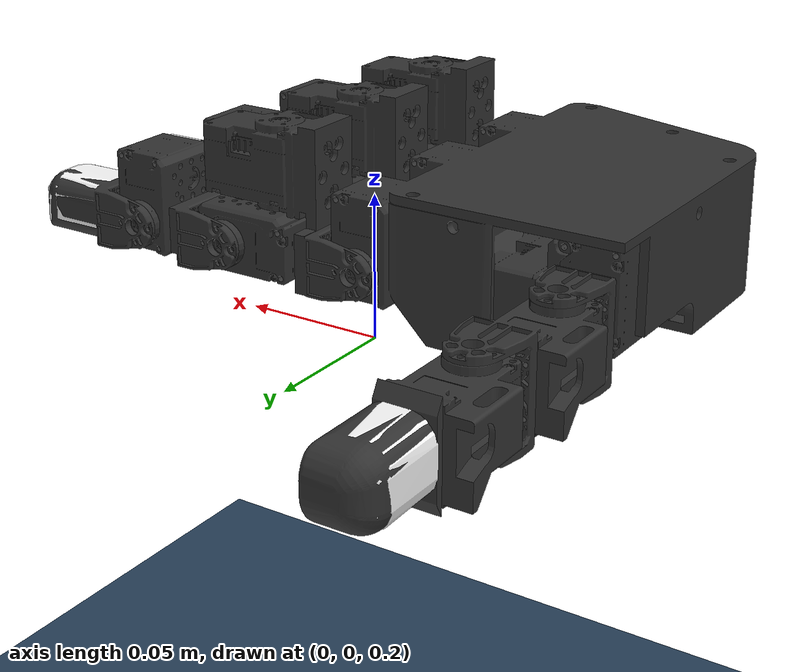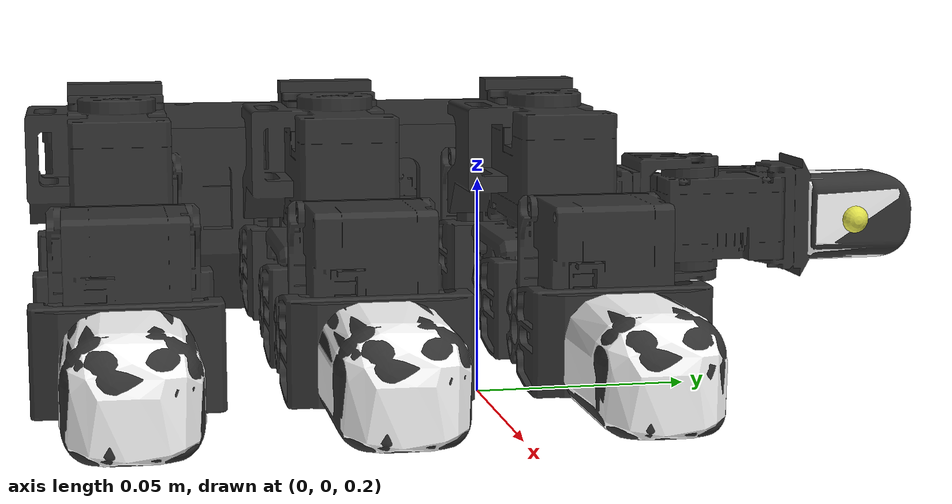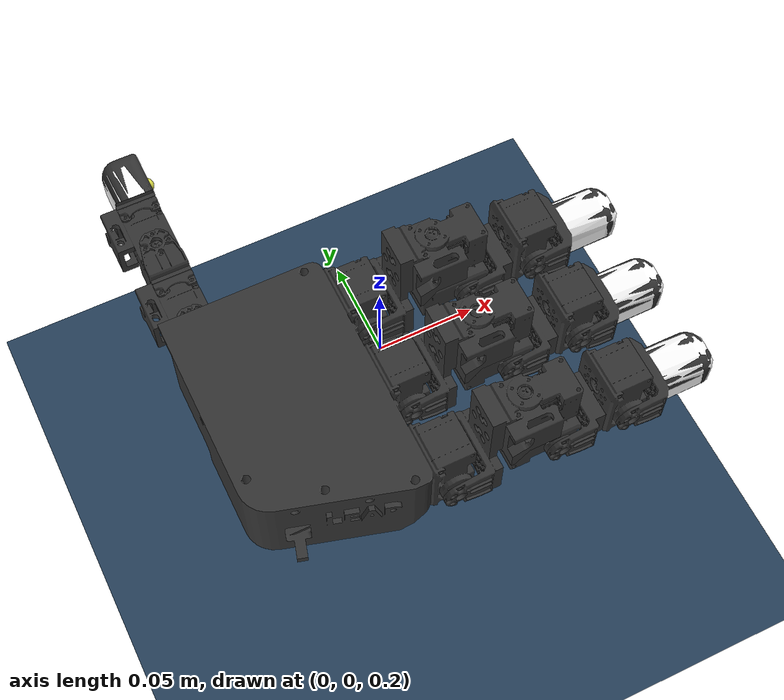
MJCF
<mujoco model="right leap hand scene">
  <include file="right_hand_fixed.xml"/>

  <statistic center="-0.07 0.1 0.12" extent=".3"/>

  <visual>
    <headlight diffuse="0.6 0.6 0.6" ambient="0.3 0.3 0.3" specular="0 0 0"/>
    <rgba haze="0.15 0.25 0.35 1"/>
    <global azimuth="45" elevation="-50"/>
  </visual>

  <asset>
    <texture type="skybox" builtin="gradient" rgb1="0.3 0.5 0.7" rgb2="0 0 0" width="512" height="3072"/>
    <texture type="2d" name="groundplane" builtin="checker" mark="edge" rgb1="0.2 0.3 0.4" rgb2="0.1 0.2 0.3"
    markrgb="0.8 0.8 0.8" width="300" height="300"/>
    <material name="groundplane" texture="groundplane" texuniform="true" texrepeat="5 5" reflectance="0.2"/>
  </asset>

  <worldbody>
    <light pos="0 0 1" dir="0 0 -1" directional="true"/>
    <geom name="floor" size="0 0 0.05" type="plane" material="groundplane"/>
    <camera name="perspective" pos="0.4 -0.4 0.4" xyaxes="1 1 0 -1 1 3" mode="trackcom"/>
    <camera name="side" pos="0 -0.6 0.4" xyaxes="1 0 0 0 1 3" mode="trackcom"/>
    <camera name="top" pos="0 0 0.6" xyaxes="0 1 0 -1 0 0" mode="trackcom"/>
    <camera name="front" pos="0.6 0 0.4" xyaxes="0 1 0 -1 0 3" mode="trackcom"/>
  </worldbody>

  <sensor>
    <framepos name="th_tip_framepos" objtype="site" objname="th_tip"/>
    <framequat name="th_tip_framequat" objtype="site" objname="th_tip"/>
    <framelinvel name="th_tip_framelinvel" objtype="site" objname="th_tip"/>
    <frameangvel name="th_tip_frameangvel" objtype="site" objname="th_tip"/>
    <force name="th_tip_force" site="th_tip"/>
    <torque name="th_tip_torque" site="th_tip"/>

    <framepos name="if_tip_framepos" objtype="site" objname="if_tip"/>
    <framequat name="if_tip_framequat" objtype="site" objname="if_tip"/>
    <framelinvel name="if_tip_framelinvel" objtype="site" objname="if_tip"/>
    <frameangvel name="if_tip_frameangvel" objtype="site" objname="if_tip"/>
    <force name="if_tip_force" site="if_tip"/>
    <torque name="if_tip_torque" site="if_tip"/>

    <framepos name="mf_tip_framepos" objtype="site" objname="mf_tip"/>
    <framequat name="mf_tip_framequat" objtype="site" objname="mf_tip"/>
    <framelinvel name="mf_tip_framelinvel" objtype="site" objname="mf_tip"/>
    <frameangvel name="mf_tip_frameangvel" objtype="site" objname="mf_tip"/>
    <force name="mf_tip_force" site="mf_tip"/>
    <torque name="mf_tip_torque" site="mf_tip"/>
  </sensor>
</mujoco>

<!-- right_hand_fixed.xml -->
<!-- LEAP Hand (Right-Handed) - MCC compatible
     Based on MuJoCo Menagerie right hand with MCC actuator/joint conventions.

Joint/body naming follows the same convention as left_hand_fixed.xml.
-->

<mujoco model="leap_rh">
  <compiler angle="radian" meshdir="./assets/" autolimits="true"/>

  <asset>
    <material name="black" rgba="0.2 0.2 0.2 1"/>
    <material name="white" rgba="1 1 1 1"/>

    <mesh name="palm" file="palm_right.obj"/>
    <mesh name="base" file="base.obj"/>
    <mesh name="proximal" file="proximal.obj"/>
    <mesh name="medial" file="medial.obj"/>
    <mesh name="distal" file="distal.obj"/>
    <mesh name="tip" file="tip.obj"/>
    <mesh name="thumb_base" file="thumb_base.obj"/>
    <mesh name="thumb_proximal" file="thumb_proximal.obj"/>
    <mesh name="thumb_distal" file="thumb_distal.obj"/>
    <mesh name="thumb_tip" file="thumb_tip.obj"/>
  </asset>

  <!-- defaults (matching MCC left_hand_fixed.xml) -->
  <default>
    <geom friction=".2"/>

    <!-- MCC actuator defaults -->
    <motor ctrlrange="-10 10"/>
    <joint damping="0.001" armature="0.0048" frictionloss="0.006"/>

    <!-- geom class defaults -->
    <default class="visual">
      <geom group="2" type="mesh" contype="0" conaffinity="0" density="0" material="black"/>
    </default>
    <default class="collision">
      <geom group="3" material="black"/>
    </default>
    <default class="tip">
      <geom type="mesh" mesh="tip" friction="0.5" material="white"/>
    </default>
    <default class="thumb_tip">
      <geom type="mesh" mesh="thumb_tip" friction="0.5" material="white"/>
    </default>

    <!-- joint class defaults (right hand: thumb limits flipped vs left) -->
    <default class="mcp">
      <joint pos="0 0 0" axis="0 0 -1" limited="true" range="-0.314 2.23"/>
    </default>
    <default class="rot">
      <joint pos="0 0 0" axis="0 0 -1" limited="true" range="-1.047 1.047"/>
    </default>
    <default class="pip">
      <joint pos="0 0 0" axis="0 0 -1" limited="true" range="-0.506 1.885"/>
    </default>
    <default class="dip">
      <joint pos="0 0 0" axis="0 0 -1" limited="true" range="-0.366 2.042"/>
    </default>
    <default class="thumb_cmc">
      <joint pos="0 0 0" axis="0 0 -1" limited="true" range="-0.349 2.094"/>
    </default>
    <default class="thumb_axl">
      <joint pos="0 0 0" axis="0 0 -1" limited="true" range="-0.349 2.094"/>
    </default>
    <default class="thumb_mcp">
      <joint pos="0 0 0" axis="0 0 -1" limited="true" range="-0.47 2.443"/>
    </default>
    <default class="thumb_ipl">
      <joint pos="0 0 0" axis="0 0 -1" limited="true" range="-1.34 1.88"/>
    </default>
  </default>

  <!-- collision filtering -->
  <contact>
    <exclude body1="palm" body2="if_bs"/>
    <exclude body1="palm" body2="mf_bs"/>
    <exclude body1="palm" body2="rf_bs"/>
    <exclude body1="palm" body2="th_mp"/>

    <exclude body1="palm" body2="if_px"/>
    <exclude body1="palm" body2="mf_px"/>
    <exclude body1="palm" body2="rf_px"/>
    <exclude body1="palm" body2="th_bs"/>

    <exclude body1="palm" body2="if_md"/>
    <exclude body1="palm" body2="mf_md"/>
    <exclude body1="palm" body2="rf_md"/>
    <exclude body1="palm" body2="th_px"/>

    <exclude body1="if_bs" body2="mf_bs"/>
    <exclude body1="if_bs" body2="rf_bs"/>
    <exclude body1="mf_bs" body2="rf_bs"/>

    <exclude body1="th_mp" body2="if_bs"/>
    <exclude body1="th_mp" body2="mf_bs"/>
    <exclude body1="th_mp" body2="rf_bs"/>
  </contact>

  <!-- MCC motor actuators (not position actuators) -->
  <actuator>
    <motor name="if_mcp_act" joint="if_mcp"/>
    <motor name="if_rot_act" joint="if_rot"/>
    <motor name="if_pip_act" joint="if_pip"/>
    <motor name="if_dip_act" joint="if_dip"/>

    <motor name="mf_mcp_act" joint="mf_mcp"/>
    <motor name="mf_rot_act" joint="mf_rot"/>
    <motor name="mf_pip_act" joint="mf_pip"/>
    <motor name="mf_dip_act" joint="mf_dip"/>

    <motor name="rf_mcp_act" joint="rf_mcp"/>
    <motor name="rf_rot_act" joint="rf_rot"/>
    <motor name="rf_pip_act" joint="rf_pip"/>
    <motor name="rf_dip_act" joint="rf_dip"/>

    <motor name="th_cmc_act" joint="th_cmc"/>
    <motor name="th_axl_act" joint="th_axl"/>
    <motor name="th_mcp_act" joint="th_mcp"/>
    <motor name="th_ipl_act" joint="th_ipl"/>
  </actuator>

  <!-- sensors -->
  <sensor>
    <jointpos name="if_mcp_sensor" joint="if_mcp"/>
    <jointpos name="if_rot_sensor" joint="if_rot"/>
    <jointpos name="if_pip_sensor" joint="if_pip"/>
    <jointpos name="if_dip_sensor" joint="if_dip"/>

    <jointpos name="mf_mcp_sensor" joint="mf_mcp"/>
    <jointpos name="mf_rot_sensor" joint="mf_rot"/>
    <jointpos name="mf_pip_sensor" joint="mf_pip"/>
    <jointpos name="mf_dip_sensor" joint="mf_dip"/>

    <jointpos name="rf_mcp_sensor" joint="rf_mcp"/>
    <jointpos name="rf_rot_sensor" joint="rf_rot"/>
    <jointpos name="rf_pip_sensor" joint="rf_pip"/>
    <jointpos name="rf_dip_sensor" joint="rf_dip"/>

    <jointpos name="th_cmc_sensor" joint="th_cmc"/>
    <jointpos name="th_axl_sensor" joint="th_axl"/>
    <jointpos name="th_mcp_sensor" joint="th_mcp"/>
    <jointpos name="th_ipl_sensor" joint="th_ipl"/>

    <framelinvel objtype="site" objname="if_tip" name="if_tip_linvel"/>
    <frameangvel objtype="site" objname="if_tip" name="if_tip_angvel"/>
    <framelinvel objtype="site" objname="mf_tip" name="mf_tip_linvel"/>
    <frameangvel objtype="site" objname="mf_tip" name="mf_tip_angvel"/>
    <framelinvel objtype="site" objname="rf_tip" name="rf_tip_linvel"/>
    <frameangvel objtype="site" objname="rf_tip" name="rf_tip_angvel"/>
    <framelinvel objtype="site" objname="th_tip" name="th_tip_linvel"/>
    <frameangvel objtype="site" objname="th_tip" name="th_tip_angvel"/>
  </sensor>

  <!-- Right hand body geometry (from MuJoCo Menagerie) -->
  <worldbody>
    <body name="palm" pos="0 0 0.25" quat="1 0 0 0">
      <inertial pos="-0.049542 -0.042914 -0.010227" quat="0.565586 0.427629 -0.574956 0.408254" mass="0.237" diaginertia="0.000407345 0.000304759 0.000180736"/>
      <geom name="palm_visual" pos="-0.02 0.02575 -0.0347" quat="1 0 0 0" class="visual" mesh="palm"/>
      <geom name="palm_collision_1" size="0.011 0.013 0.017" pos="-0.009 0.008 -0.011" type="box" class="collision"/>
      <geom name="palm_collision_2" size="0.011 0.013 0.017" pos="-0.009 -0.037 -0.011" type="box" class="collision"/>
      <geom name="palm_collision_3" size="0.011 0.013 0.017" pos="-0.009 -0.082 -0.011" type="box" class="collision"/>
      <geom name="palm_collision_4" size="0.029 0.01 0.023" pos="-0.066 -0.078 -0.0115" quat="0.989016 0 0 -0.147806" type="box" class="collision"/>
      <geom name="palm_collision_5" size="0.01 0.06 0.015" pos="-0.03 -0.035 -0.003" type="box" class="collision"/>
      <geom name="palm_collision_6" size="0.005 0.06 0.01" pos="-0.032 -0.035 -0.024" quat="0.923956 0 0.382499 0" type="box" class="collision"/>
      <geom name="palm_collision_7" size="0.012 0.058 0.023" pos="-0.048 -0.033 -0.0115" type="box" class="collision"/>
      <geom name="palm_collision_8" size="0.022 0.026 0.023" pos="-0.078 -0.053 -0.0115" type="box" class="collision"/>
      <geom name="palm_collision_9" size="0.002 0.018 0.017" pos="-0.098 -0.009 -0.006" type="box" class="collision"/>
      <geom name="palm_collision_10" size="0.022 0.028 0.002" pos="-0.078 -0.003 0.01" type="box" class="collision"/>

      <!-- index -->
      <body name="if_bs" pos="-0.007 0.023 -0.0187" quat="0.500003 0.5 0.5 -0.499997">
        <inertial pos="-0.022516 0.033882 0.016359" quat="0.388092 0.677951 -0.247713 0.573067" mass="0.044" diaginertia="1.74972e-05 1.61504e-05 7.21342e-06"/>
        <joint name="if_mcp" class="mcp"/>
        <geom name="if_bs_visual" pos="0.0084 0.0077 0.01465" quat="1 0 0 0" class="visual" mesh="base"/>
        <geom name="if_bs_collision_1" size="0.01 0.003 0.017" pos="0 0.018 0.0147" type="box" class="collision"/>
        <geom name="if_bs_collision_2" size="0.014 0.02 0.01" pos="-0.027 0.042 0.015" type="box" class="collision"/>
        <geom name="if_bs_collision_3" size="0.017 0.003 0.01" pos="-0.0262 0.02 0.0146" type="box" class="collision"/>
        <geom name="if_bs_collision_4" size="0.01 0.012 0.004" pos="-0.0295 0.035 0.029" type="box" class="collision"/>
        <geom name="if_bs_collision_5" size="0.007 0.01 0.002" pos="0 0.005 0.03" type="box" class="collision"/>
        <geom name="if_bs_collision_6" size="0.007 0.01 0.002" pos="0 0.005 -0.001" type="box" class="collision"/>

        <body name="if_px" pos="-0.0122 0.0381 0.0145" quat="0.500003 -0.5 -0.499997 0.5">
          <inertial pos="0.0075 -0.0002 -0.011" quat="0 0.707107 0 0.707107" mass="0.032" diaginertia="4.8853e-06 4.3733e-06 3.0933e-06"/>
          <joint name="if_rot" class="rot"/>
          <geom name="if_px_visual" pos="0.0096 0.0002 0.0007" quat="0.500003 -0.5 -0.5 -0.499997" class="visual" mesh="proximal"/>
          <geom name="if_px_collision" size="0.017 0.013 0.011" pos="0.0075 -0.0002 -0.011" type="box" class="collision"/>

          <body name="if_md" pos="0.015 0.0143 -0.013" quat="0.500003 0.5 -0.5 0.499997">
            <inertial pos="0.0054215 -0.029148 0.015" quat="0.687228 0.687228 0.166487 0.166487" mass="0.037" diaginertia="8.28004e-06 8.1598e-06 5.39516e-06"/>
            <joint name="if_pip" class="pip"/>
            <geom name="if_md_visual" pos="0.0211 -0.0084 0.0097" quat="2.67949e-08 -1 0 0" class="visual" mesh="medial"/>
            <geom name="if_md_collision_1" size="0.008 0.003 0.013" pos="0 -0.02 0.015" type="box" class="collision"/>
            <geom name="if_md_collision_2" size="0.01 0.002 0.017" pos="0 -0.016 0.015" type="box" class="collision"/>
            <geom name="if_md_collision_3" size="0.007 0.01 0.002" pos="0 -0.0045 0.03" type="box" class="collision"/>
            <geom name="if_md_collision_4" size="0.007 0.01 0.002" pos="0 -0.0045 0" type="box" class="collision"/>
            <geom name="if_md_collision_5" size="0.017 0.011 0.013" pos="0.0075 -0.035 0.015" type="box" class="collision"/>

            <body name="if_ds" pos="0 -0.0361 0.0002">
              <inertial pos="-0.0008794 -0.027019 0.014594" quat="0.702905 0.710643 -0.0212937 -0.0214203" mass="0.016" diaginertia="3.71863e-06 3.02396e-06 1.6518e-06"/>
              <joint name="if_dip" class="dip"/>
              <site name="if_tip" pos="-0.01 -0.035 0.015" quat="-0.5 -0.5 0.5 0.5" type="sphere" size="0.004" rgba="0.9 0.3 0.3 1"/>
              <geom name="if_ds_visual" pos="0.0132 -0.0061 0.0144" quat="2.67949e-08 1 0 0" class="visual" mesh="distal"/>
              <geom name="if_ds_collision_1" size="0.01 0.003 0.015" pos="0 -0.017 0.015" type="box" class="collision"/>
              <geom name="if_ds_collision_2" size="0.007 0.011 0.002" pos="0 -0.006 0.03" type="box" class="collision"/>
              <geom name="if_ds_collision_3" size="0.007 0.011 0.002" pos="0 -0.006 -0.001" type="box" class="collision"/>
              <geom name="if_tip" class="tip"/>
            </body>
          </body>
        </body>
      </body>

      <!-- middle -->
      <body name="mf_bs" pos="-0.0071 -0.0224 -0.0187" quat="0.500003 0.5 0.5 -0.499997">
        <inertial pos="-0.022516 0.033882 0.016359" quat="0.388092 0.677951 -0.247713 0.573067" mass="0.044" diaginertia="1.74972e-05 1.61504e-05 7.21342e-06"/>
        <joint name="mf_mcp" class="mcp"/>
        <geom name="mf_bs_visual" pos="0.0084 0.0077 0.01465" quat="1 0 0 0" class="visual" mesh="base"/>
        <geom name="mf_bs_collision_1" size="0.01 0.003 0.017" pos="0 0.018 0.0147" type="box" class="collision"/>
        <geom name="mf_bs_collision_2" size="0.014 0.02 0.01" pos="-0.027 0.042 0.015" type="box" class="collision"/>
        <geom name="mf_bs_collision_3" size="0.017 0.003 0.01" pos="-0.0262 0.02 0.0146" type="box" class="collision"/>
        <geom name="mf_bs_collision_4" size="0.01 0.012 0.004" pos="-0.0295 0.035 0.029" type="box" class="collision"/>
        <geom name="mf_bs_collision_5" size="0.007 0.01 0.002" pos="0 0.005 0.03" type="box" class="collision"/>
        <geom name="mf_bs_collision_6" size="0.007 0.01 0.002" pos="0 0.005 -0.001" type="box" class="collision"/>

        <body name="mf_px" pos="-0.0122 0.0381 0.0145" quat="0.500003 -0.5 -0.499997 0.5">
          <inertial pos="0.0075 -0.0002 -0.011" quat="0 0.707107 0 0.707107" mass="0.032" diaginertia="4.8853e-06 4.3733e-06 3.0933e-06"/>
          <joint name="mf_rot" class="rot"/>
          <geom name="mf_px_visual" pos="0.0096 0.0003 0.0007" quat="0.500003 -0.5 -0.5 -0.499997" class="visual" mesh="proximal"/>
          <geom name="mf_px_collision" size="0.017 0.013 0.011" pos="0.0075 -0.0002 -0.011" type="box" class="collision"/>

          <body name="mf_md" pos="0.015 0.0143 -0.013" quat="0.500003 0.5 -0.5 0.499997">
            <inertial pos="0.0054215 -0.029148 0.015" quat="0.687228 0.687228 0.166487 0.166487" mass="0.037" diaginertia="8.28004e-06 8.1598e-06 5.39516e-06"/>
            <joint name="mf_pip" class="pip"/>
            <geom name="mf_md_visual" pos="0.0211 -0.0084 0.0097" quat="1.32679e-06 -1 0 0" class="visual" mesh="medial"/>
            <geom name="mf_md_collision_1" size="0.008 0.003 0.013" pos="0 -0.02 0.015" type="box" class="collision"/>
            <geom name="mf_md_collision_2" size="0.01 0.002 0.017" pos="0 -0.016 0.015" type="box" class="collision"/>
            <geom name="mf_md_collision_3" size="0.007 0.01 0.002" pos="0 -0.0045 0.03" type="box" class="collision"/>
            <geom name="mf_md_collision_4" size="0.007 0.01 0.002" pos="0 -0.0045 0" type="box" class="collision"/>
            <geom name="mf_md_collision_5" size="0.017 0.011 0.013" pos="0.0075 -0.035 0.015" type="box" class="collision"/>

            <body name="mf_ds" pos="0 -0.0361 0.0002">
              <inertial pos="-0.0008794 -0.027019 0.014594" quat="0.702905 0.710643 -0.0212937 -0.0214203" mass="0.016" diaginertia="3.71863e-06 3.02396e-06 1.6518e-06"/>
              <joint name="mf_dip" class="dip"/>
              <site name="mf_tip" pos="-0.01 -0.035 0.015" quat="-0.5 -0.5 0.5 0.5" type="sphere" size="0.004" rgba="0.3 0.9 0.3 1"/>
              <geom name="mf_ds_visual" pos="0.0132 -0.0061 0.0145" quat="1.32679e-06 1 0 0" class="visual" mesh="distal"/>
              <geom name="mf_ds_collision_1" size="0.01 0.003 0.015" pos="0 -0.017 0.015" type="box" class="collision"/>
              <geom name="mf_ds_collision_2" size="0.007 0.011 0.002" pos="0 -0.006 0.03" type="box" class="collision"/>
              <geom name="mf_ds_collision_3" size="0.007 0.011 0.002" pos="0 -0.006 -0.001" type="box" class="collision"/>
              <geom name="mf_tip" class="tip"/>
            </body>
          </body>
        </body>
      </body>

      <!-- ring -->
      <body name="rf_bs" pos="-0.00709 -0.0678 -0.0187" quat="0.500003 0.5 0.5 -0.499997">
        <inertial pos="-0.022516 0.033882 0.016359" quat="0.388092 0.677951 -0.247713 0.573067" mass="0.044" diaginertia="1.74972e-05 1.61504e-05 7.21342e-06"/>
        <joint name="rf_mcp" class="mcp"/>
        <geom name="rf_bs_visual" pos="0.0084 0.0077 0.01465" quat="1 0 0 0" class="visual" mesh="base"/>
        <geom name="rf_bs_collision_1" size="0.01 0.003 0.017" pos="0 0.018 0.0147" type="box" class="collision"/>
        <geom name="rf_bs_collision_2" size="0.014 0.02 0.01" pos="-0.027 0.042 0.015" type="box" class="collision"/>
        <geom name="rf_bs_collision_3" size="0.017 0.003 0.01" pos="-0.0262 0.02 0.0146" type="box" class="collision"/>
        <geom name="rf_bs_collision_4" size="0.01 0.012 0.004" pos="-0.0295 0.035 0.029" type="box" class="collision"/>
        <geom name="rf_bs_collision_5" size="0.007 0.01 0.002" pos="0 0.005 0.03" type="box" class="collision"/>
        <geom name="rf_bs_collision_6" size="0.007 0.01 0.002" pos="0 0.005 -0.001" type="box" class="collision"/>

        <body name="rf_px" pos="-0.0122 0.0381 0.0145" quat="0.500003 -0.5 -0.499997 0.5">
          <inertial pos="0.0075 -0.0002 -0.011" quat="0 0.707107 0 0.707107" mass="0.032" diaginertia="4.8853e-06 4.3733e-06 3.0933e-06"/>
          <joint name="rf_rot" class="rot"/>
          <geom name="rf_px_visual" pos="0.0096 0.0003 0.0007" quat="0.500003 -0.5 -0.5 -0.499997" class="visual" mesh="proximal"/>
          <geom name="rf_px_collision" size="0.017 0.013 0.011" pos="0.0075 -0.0002 -0.011" type="box" class="collision"/>

          <body name="rf_md" pos="0.015 0.0143 -0.013" quat="0.500003 0.5 -0.5 0.499997">
            <inertial pos="0.0054215 -0.029148 0.015" quat="0.687228 0.687228 0.166487 0.166487" mass="0.037" diaginertia="8.28004e-06 8.1598e-06 5.39516e-06"/>
            <joint name="rf_pip" class="pip"/>
            <geom name="rf_md_visual" pos="0.0211 -0.0084 0.0097" quat="1.32679e-06 -1 0 0" class="visual" mesh="medial"/>
            <geom name="rf_md_collision_1" size="0.008 0.003 0.013" pos="0 -0.02 0.015" type="box" class="collision"/>
            <geom name="rf_md_collision_2" size="0.01 0.002 0.017" pos="0 -0.016 0.015" type="box" class="collision"/>
            <geom name="rf_md_collision_3" size="0.007 0.01 0.002" pos="0 -0.0045 0.03" type="box" class="collision"/>
            <geom name="rf_md_collision_4" size="0.007 0.01 0.002" pos="0 -0.0045 0" type="box" class="collision"/>
            <geom name="rf_md_collision_5" size="0.017 0.011 0.013" pos="0.0075 -0.035 0.015" type="box" class="collision"/>

            <body name="rf_ds" pos="0 -0.03609 0.0002">
              <inertial pos="-0.0008794 -0.027019 0.014594" quat="0.702905 0.710643 -0.0212937 -0.0214203" mass="0.016" diaginertia="3.71863e-06 3.02396e-06 1.6518e-06"/>
              <joint name="rf_dip" class="dip"/>
              <site name="rf_tip" pos="-0.01 -0.035 0.015" quat="-0.5 -0.5 0.5 0.5" type="sphere" size="0.004" rgba="0.3 0.3 0.9 1"/>
              <geom name="rf_ds_visual" pos="0.0132 -0.0061 0.0145" quat="1.32679e-06 1 0 0" class="visual" mesh="distal"/>
              <geom name="rf_ds_collision_1" size="0.01 0.003 0.015" pos="0 -0.017 0.015" type="box" class="collision"/>
              <geom name="rf_ds_collision_2" size="0.007 0.011 0.002" pos="0 -0.006 0.03" type="box" class="collision"/>
              <geom name="rf_ds_collision_3" size="0.007 0.011 0.002" pos="0 -0.006 -0.001" type="box" class="collision"/>
              <geom name="rf_tip" class="tip"/>
            </body>
          </body>
        </body>
      </body>

      <!-- thumb -->
      <body name="th_mp" pos="-0.0693 -0.0012 -0.0216" quat="0.707109 0 0.707105 0">
        <inertial pos="0.0075 -0.0002 -0.011" quat="0 0.707107 0 0.707107" mass="0.032" diaginertia="4.8853e-06 4.3733e-06 3.0933e-06"/>
        <joint name="th_cmc" class="thumb_cmc"/>
        <geom name="th_mp_visual" pos="-0.0053 0.0003 0.00078" quat="0.500003 -0.5 -0.5 -0.499997" class="visual" mesh="proximal"/>
        <geom name="th_mp_collision" size="0.017 0.013 0.011" pos="-0.0075 -0.0002 -0.011" type="box" class="collision"/>

        <body name="th_bs" pos="0 0.0143 -0.013" quat="0.500003 0.5 -0.5 0.499997">
          <inertial pos="0 0 -0.0070806" quat="0.707107 0.707107 0 0" mass="0.003" diaginertia="6.1932e-07 5.351e-07 2.1516e-07"/>
          <joint name="th_axl" class="thumb_axl"/>
          <geom name="th_bs_visual" pos="0.01196 0 -0.0158" quat="0.707109 0.707105 0 0" class="visual" mesh="thumb_base"/>
          <geom name="th_bs_collision_1" size="0.009 0.0165 0.002" pos="0 0 -0.0015" type="box" class="collision"/>
          <geom name="th_bs_collision_2" size="0.007 0.002 0.01" pos="0 -0.015 -0.013" type="box" class="collision"/>
          <geom name="th_bs_collision_3" size="0.007 0.002 0.01" pos="0 0.015 -0.013" type="box" class="collision"/>

          <body name="th_px" pos="0 0.0145 -0.017" quat="0.707109 -0.707105 0 0">
            <inertial pos="-0.0020593 0.015912 -0.013733" quat="0.698518 0.697382 -0.104933 0.121324" mass="0.038" diaginertia="9.87104e-06 9.32653e-06 4.36203e-06"/>
            <joint name="th_mcp" class="thumb_mcp"/>
            <geom name="th_px_visual" pos="0.0439 0.0579 -0.0086" quat="1 0 0 0" class="visual" mesh="thumb_proximal"/>
            <geom name="th_px_collision_1" size="0.01 0.02 0.012" pos="0 0.0105 -0.014" type="box" class="collision"/>
            <geom name="th_px_collision_2" size="0.01 0.002 0.016" pos="0 0.031 -0.015" type="box" class="collision"/>
            <geom name="th_px_collision_3" size="0.007 0.01 0.002" pos="0 0.042 0.001" type="box" class="collision"/>
            <geom name="th_px_collision_4" size="0.007 0.01 0.002" pos="0 0.042 -0.029" type="box" class="collision"/>
            <geom name="th_px_collision_5" size="0.005 0.012 0.009" pos="-0.0135 0.0175 -0.011656" type="box" class="collision"/>

            <body name="th_ds" pos="0 0.0466 0.0002" quat="1.32679e-06 0 0 1">
              <inertial pos="0.00096191 -0.024203 -0.014419" quat="0.35287 0.311272 -0.632839 0.614904" mass="0.049" diaginertia="2.08591e-05 2.0402e-05 4.71335e-06"/>
              <joint name="th_ipl" class="thumb_ipl"/>
              <site name="th_tip" pos="-0.01 -0.045 -0.015" quat="-0.5 -0.5 0.5 0.5" type="sphere" size="0.004" rgba="0.9 0.9 0.3 1"/>
              <geom name="th_ds_visual" pos="0.0625 0.0784 0.0489" quat="1 0 0 0" class="visual" mesh="thumb_distal"/>
              <geom name="th_ds_collision_1" size="0.01 0.018 0.012" pos="0 -0.0085 -0.015" type="box" class="collision"/>
              <geom name="th_ds_collision_2" size="0.01 0.002 0.015" pos="0 -0.029 -0.014" type="box" class="collision"/>
              <geom name="th_ds_collision_3" size="0.004 0.012 0.009" pos="0.015 -0.0175 -0.0115" type="box" class="collision"/>
              <geom name="th_tip" class="thumb_tip"/>
            </body>
          </body>
        </body>
      </body>

    </body>
  </worldbody>
</mujoco>
